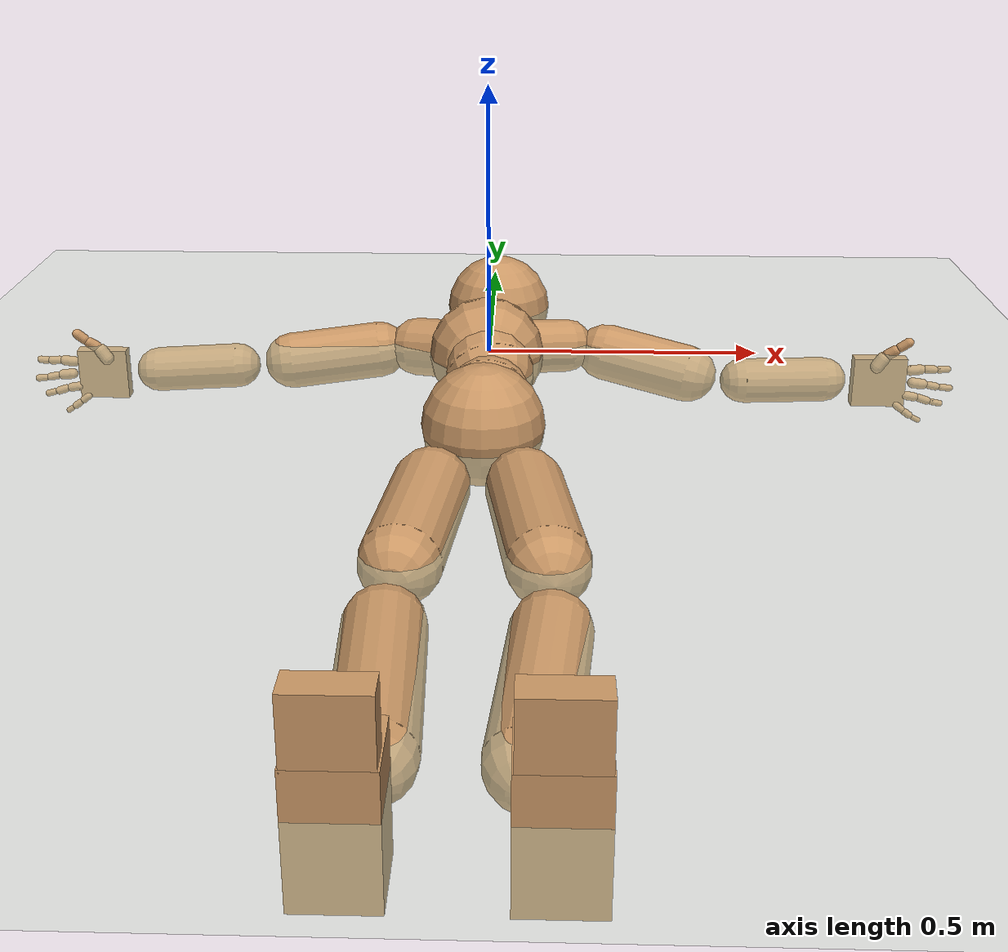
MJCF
<mujoco model="humanoid">
  <compiler coordinate="local"/>
  <default>
    <joint damping="0.0" armature="0.01" stiffness="0.0" limited="true"/>
    <geom conaffinity="1" condim="3" contype="7" margin="0.001" rgba="0.8 0.6 .4 1"/>
  </default>
  <asset>
    <texture type="skybox" builtin="gradient" rgb1=".4 .5 .6" rgb2="0 0 0" width="100" height="100"/>
    <texture builtin="flat" height="1278" mark="cross" markrgb="1 1 1" name="texgeom" random="0.01" rgb1="0.8 0.6 0.4" rgb2="0.8 0.6 0.4" type="cube" width="127"/>
    <texture builtin="checker" height="100" name="texplane" rgb1="0 0 0" rgb2="0.8 0.8 0.8" type="2d" width="100"/>
    <material name="MatPlane" reflectance="0.5" shininess="1" specular="1" texrepeat="60 60" texture="texplane"/>
    <material name="geom" texture="texgeom" texuniform="true"/>
  </asset>
  <worldbody>
    <light cutoff="100" diffuse="1 1 1" dir="-0 0 -1.3" directional="true" exponent="1" pos="0 0 1.3" specular=".1 .1 .1"/>
    <geom conaffinity="1" condim="3" name="floor" pos="0 0 0" rgba="0.8 0.9 0.8 1" size="100 100 .2" type="plane" material="MatPlane"/>
    <body name="Pelvis" pos="0.003 -0.3814 0.0132">
      <freejoint name="Pelvis"/>
      <geom type="sphere" contype="1" conaffinity="1" density="4629.6296296296305" size="0.1016" pos="0.0000 0.0000 0.0000" name="Pelvis"/>
      <body name="L_Hip" pos="0.0585 -0.0972 -0.026">
        <joint name="L_Hip_x" type="hinge" pos="0 0 0" axis="1 0 0" user="250 2.5 1 500 10 2" armature="0.01" range="-90.0000 90.0000" damping="0" stiffness="0"/>
        <joint name="L_Hip_y" type="hinge" pos="0 0 0" axis="0 1 0" user="250 2.5 1 500 10 2" armature="0.01" range="-90.0000 90.0000" damping="0" stiffness="0"/>
        <joint name="L_Hip_z" type="hinge" pos="0 0 0" axis="0 0 1" user="250 2.5 1 500 10 2" armature="0.01" range="-90.0000 90.0000" damping="0" stiffness="0"/>
        <geom type="capsule" contype="1" conaffinity="1" density="2040.816327" fromto="0.0113 -0.0773 -0.0015 0.0454 -0.3092 -0.0061" size="0.0611" name="L_Hip"/>
        <body name="L_Knee" pos="0.0567 -0.3866 -0.0076">
          <joint name="L_Knee_x" type="hinge" pos="0 0 0" axis="1 0 0" user="250 2.5 1 500 10 2" armature="0.01" range="-180.0000 180.0000" damping="0" stiffness="0"/>
          <joint name="L_Knee_y" type="hinge" pos="0 0 0" axis="0 1 0" user="250 2.5 1 500 10 2" armature="0.01" range="-5.6250 5.6250" damping="0" stiffness="0"/>
          <joint name="L_Knee_z" type="hinge" pos="0 0 0" axis="0 0 1" user="250 2.5 1 500 10 2" armature="0.01" range="-5.6250 5.6250" damping="0" stiffness="0"/>
          <geom type="capsule" contype="1" conaffinity="1" density="1234.567901" fromto="-0.0089 -0.0821 -0.0065 -0.0356 -0.3285 -0.0261" size="0.0547" name="L_Knee"/>
          <body name="L_Ankle" pos="-0.0445 -0.4107 -0.0326">
            <joint name="L_Ankle_x" type="hinge" pos="0 0 0" axis="1 0 0" user="150 2.5 1 500 10 2" armature="0.01" range="-90.0000 90.0000" damping="0" stiffness="0"/>
            <joint name="L_Ankle_y" type="hinge" pos="0 0 0" axis="0 1 0" user="150 2.5 1 500 10 2" armature="0.01" range="-90.0000 90.0000" damping="0" stiffness="0"/>
            <joint name="L_Ankle_z" type="hinge" pos="0 0 0" axis="0 0 1" user="150 2.5 1 500 10 2" armature="0.01" range="-90.0000 90.0000" damping="0" stiffness="0"/>
            <geom type="box" density="450.673137" pos="0.0424 -0.0294 0.0245" size="0.0516 0.0477 0.0885" quat="1.0000 0.0000 0.0000 0.0000" name="L_Ankle"/>
            <body name="L_Toe" pos="0.0492 -0.0595 0.1225">
              <joint name="L_Toe_x" type="hinge" pos="0 0 0" axis="1 0 0" user="150 1 1 500 1 1" armature="0.01" range="-90.0000 90.0000" damping="0" stiffness="0"/>
              <joint name="L_Toe_y" type="hinge" pos="0 0 0" axis="0 1 0" user="150 1 1 500 1 1" armature="0.01" range="-45.0000 45.0000" damping="0" stiffness="0"/>
              <joint name="L_Toe_z" type="hinge" pos="0 0 0" axis="0 0 1" user="150 1 1 500 1 1" armature="0.01" range="-45.0000 45.0000" damping="0" stiffness="0"/>
              <geom type="box" density="422.499499" pos="-0.0068 0.0035 0.0266" size="0.0494 0.0211 0.0513" quat="1.0000 0.0000 0.0000 0.0000" name="L_Toe"/>
            </body>
          </body>
        </body>
      </body>
      <body name="R_Hip" pos="-0.0634 -0.1094 -0.0205">
        <joint name="R_Hip_x" type="hinge" pos="0 0 0" axis="1 0 0" user="250 2.5 1 500 10 2" armature="0.01" range="-90.0000 90.0000" damping="0" stiffness="0"/>
        <joint name="R_Hip_y" type="hinge" pos="0 0 0" axis="0 1 0" user="250 2.5 1 500 10 2" armature="0.01" range="-90.0000 90.0000" damping="0" stiffness="0"/>
        <joint name="R_Hip_z" type="hinge" pos="0 0 0" axis="0 0 1" user="250 2.5 1 500 10 2" armature="0.01" range="-90.0000 90.0000" damping="0" stiffness="0"/>
        <geom type="capsule" contype="1" conaffinity="1" density="2040.816327" fromto="-0.0092 -0.0738 -0.0031 -0.0368 -0.2951 -0.0125" size="0.0604" name="R_Hip"/>
        <body name="R_Knee" pos="-0.046 -0.3689 -0.0157">
          <joint name="R_Knee_x" type="hinge" pos="0 0 0" axis="1 0 0" user="250 2.5 1 500 10 2" armature="0.01" range="-180.0000 180.0000" damping="0" stiffness="0"/>
          <joint name="R_Knee_y" type="hinge" pos="0 0 0" axis="0 1 0" user="250 2.5 1 500 10 2" armature="0.01" range="-5.6250 5.6250" damping="0" stiffness="0"/>
          <joint name="R_Knee_z" type="hinge" pos="0 0 0" axis="0 0 1" user="250 2.5 1 500 10 2" armature="0.01" range="-5.6250 5.6250" damping="0" stiffness="0"/>
          <geom type="capsule" contype="1" conaffinity="1" density="1234.567901" fromto="0.0031 -0.0837 -0.0041 0.0124 -0.3350 -0.0165" size="0.0564" name="R_Knee"/>
          <body name="R_Ankle" pos="0.0155 -0.4187 -0.0206">
            <joint name="R_Ankle_x" type="hinge" pos="0 0 0" axis="1 0 0" user="150 1 1 500 10 2" armature="0.01" range="-90.0000 90.0000" damping="0" stiffness="0"/>
            <joint name="R_Ankle_y" type="hinge" pos="0 0 0" axis="0 1 0" user="150 1 1 500 10 2" armature="0.01" range="-90.0000 90.0000" damping="0" stiffness="0"/>
            <joint name="R_Ankle_z" type="hinge" pos="0 0 0" axis="0 0 1" user="150 1 1 500 10 2" armature="0.01" range="-90.0000 90.0000" damping="0" stiffness="0"/>
            <geom type="box" density="450.66325" pos="-0.0251 -0.0269 0.0151" size="0.0516 0.0477 0.0885" quat="1.0000 0.0000 0.0000 0.0000" name="R_Ankle"/>
            <body name="R_Toe" pos="-0.0401 -0.0598 0.1233">
              <joint name="R_Toe_x" type="hinge" pos="0 0 0" axis="1 0 0" user="150 1 1 500 1 1" armature="0.01" range="-90.0000 90.0000" damping="0" stiffness="0"/>
              <joint name="R_Toe_y" type="hinge" pos="0 0 0" axis="0 1 0" user="150 1 1 500 1 1" armature="0.01" range="-45.0000 45.0000" damping="0" stiffness="0"/>
              <joint name="R_Toe_z" type="hinge" pos="0 0 0" axis="0 0 1" user="150 1 1 500 1 1" armature="0.01" range="-45.0000 45.0000" damping="0" stiffness="0"/>
              <geom type="box" density="422.496348" pos="0.0150 0.0063 0.0164" size="0.0494 0.0211 0.0513" quat="1.0000 0.0000 0.0000 0.0000" name="R_Toe"/>
            </body>
          </body>
        </body>
      </body>
      <body name="Torso" pos="-0.0028 0.1157 -0.0293">
        <joint name="Torso_x" type="hinge" pos="0 0 0" axis="1 0 0" user="500 5 1 500 10 2" armature="0.01" range="-60.0000 60.0000" damping="0" stiffness="0"/>
        <joint name="Torso_y" type="hinge" pos="0 0 0" axis="0 1 0" user="500 5 1 500 10 2" armature="0.01" range="-60.0000 60.0000" damping="0" stiffness="0"/>
        <joint name="Torso_z" type="hinge" pos="0 0 0" axis="0 0 1" user="500 5 1 500 10 2" armature="0.01" range="-60.0000 60.0000" damping="0" stiffness="0"/>
        <geom type="capsule" contype="1" conaffinity="1" density="2040.816327" fromto="0.0046 0.0654 -0.0030 0.0056 0.0799 -0.0037" size="0.0759" name="Torso"/>
        <body name="Spine" pos="0.0103 0.1453 -0.0066">
          <joint name="Spine_x" type="hinge" pos="0 0 0" axis="1 0 0" user="500 5 1 500 10 2" armature="0.01" range="-60.0000 60.0000" damping="0" stiffness="0"/>
          <joint name="Spine_y" type="hinge" pos="0 0 0" axis="0 1 0" user="500 5 1 500 10 2" armature="0.01" range="-60.0000 60.0000" damping="0" stiffness="0"/>
          <joint name="Spine_z" type="hinge" pos="0 0 0" axis="0 0 1" user="500 5 1 500 10 2" armature="0.01" range="-60.0000 60.0000" damping="0" stiffness="0"/>
          <geom type="capsule" contype="1" conaffinity="1" density="2040.816327" fromto="-0.0052 0.0257 0.0123 -0.0064 0.0314 0.0151" size="0.0802" name="Spine"/>
          <body name="Chest" pos="-0.0116 0.0572 0.0274">
            <joint name="Chest_x" type="hinge" pos="0 0 0" axis="1 0 0" user="500 5 1 500 10 2" armature="0.01" range="-60.0000 60.0000" damping="0" stiffness="0"/>
            <joint name="Chest_y" type="hinge" pos="0 0 0" axis="0 1 0" user="500 5 1 500 10 2" armature="0.01" range="-60.0000 60.0000" damping="0" stiffness="0"/>
            <joint name="Chest_z" type="hinge" pos="0 0 0" axis="0 0 1" user="500 5 1 500 10 2" armature="0.01" range="-60.0000 60.0000" damping="0" stiffness="0"/>
            <geom type="capsule" contype="1" conaffinity="1" density="2040.816327" fromto="-0.0022 0.0530 -0.0073 -0.0027 0.0648 -0.0089" size="0.1065" name="Chest"/>
            <body name="Neck" pos="-0.0129 0.1748 -0.0303">
              <joint name="Neck_x" type="hinge" pos="0 0 0" axis="1 0 0" user="150 1 1 250 50 4" armature="0.01" range="-180.0000 180.0000" damping="0" stiffness="0"/>
              <joint name="Neck_y" type="hinge" pos="0 0 0" axis="0 1 0" user="150 1 1 250 50 4" armature="0.01" range="-180.0000 180.0000" damping="0" stiffness="0"/>
              <joint name="Neck_z" type="hinge" pos="0 0 0" axis="0 0 1" user="150 1 1 250 50 4" armature="0.01" range="-180.0000 180.0000" damping="0" stiffness="0"/>
              <geom type="capsule" contype="1" conaffinity="1" density="1000" fromto="0.0052 0.0345 0.0043 0.0207 0.1378 0.0171" size="0.0439" name="Neck"/>
              <body name="Head" pos="0.0258 0.1723 0.0213">
                <joint name="Head_x" type="hinge" pos="0 0 0" axis="1 0 0" user="150 1 1 250 50 4" armature="0.01" range="-90.0000 90.0000" damping="0" stiffness="0"/>
                <joint name="Head_y" type="hinge" pos="0 0 0" axis="0 1 0" user="150 1 1 250 50 4" armature="0.01" range="-90.0000 90.0000" damping="0" stiffness="0"/>
                <joint name="Head_z" type="hinge" pos="0 0 0" axis="0 0 1" user="150 1 1 250 50 4" armature="0.01" range="-90.0000 90.0000" damping="0" stiffness="0"/>
                <geom type="sphere" contype="1" conaffinity="1" density="1000" size="0.1033" pos="0.0000 0.0000 0.0000" name="Head"/>
              </body>
            </body>
            <body name="L_Thorax" pos="0.0477 0.0898 -0.0061">
              <joint name="L_Thorax_x" type="hinge" pos="0 0 0" axis="1 0 0" user="200 2 1 500 50 4" armature="0.01" range="-180.0000 180.0000" damping="0" stiffness="0"/>
              <joint name="L_Thorax_y" type="hinge" pos="0 0 0" axis="0 1 0" user="200 2 1 500 50 4" armature="0.01" range="-180.0000 180.0000" damping="0" stiffness="0"/>
              <joint name="L_Thorax_z" type="hinge" pos="0 0 0" axis="0 0 1" user="200 2 1 500 50 4" armature="0.01" range="-180.0000 180.0000" damping="0" stiffness="0"/>
              <geom type="capsule" contype="1" conaffinity="1" density="1000" fromto="0.0251 0.0119 -0.0031 0.1005 0.0475 -0.0126" size="0.0509" name="L_Thorax"/>
              <body name="L_Shoulder" pos="0.1257 0.0594 -0.0157">
                <joint name="L_Shoulder_x" type="hinge" pos="0 0 0" axis="1 0 0" user="200 2 1 500 50 4" armature="0.01" range="-180.0000 180.0000" damping="0" stiffness="0"/>
                <joint name="L_Shoulder_y" type="hinge" pos="0 0 0" axis="0 1 0" user="200 2 1 500 50 4" armature="0.01" range="-180.0000 180.0000" damping="0" stiffness="0"/>
                <joint name="L_Shoulder_z" type="hinge" pos="0 0 0" axis="0 0 1" user="200 2 1 500 50 4" armature="0.01" range="-180.0000 180.0000" damping="0" stiffness="0"/>
                <geom type="capsule" contype="1" conaffinity="1" density="1000" fromto="0.0516 -0.0147 -0.0088 0.2063 -0.0587 -0.0351" size="0.0538" name="L_Shoulder"/>
                <body name="L_Elbow" pos="0.2579 -0.0734 -0.0439">
                  <joint name="L_Elbow_x" type="hinge" pos="0 0 0" axis="1 0 0" user="150 1 1 150 10 2" armature="0.01" range="-720.0000 720.0000" damping="0" stiffness="0"/>
                  <joint name="L_Elbow_y" type="hinge" pos="0 0 0" axis="0 1 0" user="150 1 1 150 10 2" armature="0.01" range="-720.0000 720.0000" damping="0" stiffness="0"/>
                  <joint name="L_Elbow_z" type="hinge" pos="0 0 0" axis="0 0 1" user="150 1 1 150 10 2" armature="0.01" range="-720.0000 720.0000" damping="0" stiffness="0"/>
                  <geom type="capsule" contype="1" conaffinity="1" density="1000" fromto="0.0517 0.0047 -0.0002 0.2066 0.0186 -0.0008" size="0.0419" name="L_Elbow"/>
                  <body name="L_Wrist" pos="0.2583 0.0233 -0.001">
                    <joint name="L_Wrist_x" type="hinge" pos="0 0 0" axis="1 0 0" user="100 1 1 150 1 1" armature="0.01" range="-180.0000 180.0000" damping="0" stiffness="0"/>
                    <joint name="L_Wrist_y" type="hinge" pos="0 0 0" axis="0 1 0" user="100 1 1 150 1 1" armature="0.01" range="-180.0000 180.0000" damping="0" stiffness="0"/>
                    <joint name="L_Wrist_z" type="hinge" pos="0 0 0" axis="0 0 1" user="100 1 1 150 1 1" armature="0.01" range="-180.0000 180.0000" damping="0" stiffness="0"/>
                    <geom type="box" density="1207.963877" pos="0.0540 -0.0014 -0.0031" size="0.0499 0.0127 0.0479" quat="1.0000 0.0000 0.0000 0.0000" name="L_Wrist"/>
                    <body name="L_Index1" pos="0.105 -0.0086 0.0202">
                      <joint name="L_Index1_x" type="hinge" pos="0 0 0" axis="1 0 0" user="100 10 1 150" armature="0.01" range="-180.0000 180.0000" damping="0" stiffness="0"/>
                      <joint name="L_Index1_y" type="hinge" pos="0 0 0" axis="0 1 0" user="100 10 1 150" armature="0.01" range="-180.0000 180.0000" damping="0" stiffness="0"/>
                      <joint name="L_Index1_z" type="hinge" pos="0 0 0" axis="0 0 1" user="100 10 1 150" armature="0.01" range="-180.0000 180.0000" damping="0" stiffness="0"/>
                      <geom type="capsule" contype="1" conaffinity="1" density="1000" fromto="0.0065 0.0005 0.0006 0.0262 0.0019 0.0024" size="0.0095" name="L_Index1"/>
                      <body name="L_Index2" pos="0.0327 0.0024 0.003">
                        <joint name="L_Index2_x" type="hinge" pos="0 0 0" axis="1 0 0" user="100 10 1 150" armature="0.01" range="-180.0000 180.0000" damping="0" stiffness="0"/>
                        <joint name="L_Index2_y" type="hinge" pos="0 0 0" axis="0 1 0" user="100 10 1 150" armature="0.01" range="-180.0000 180.0000" damping="0" stiffness="0"/>
                        <joint name="L_Index2_z" type="hinge" pos="0 0 0" axis="0 0 1" user="100 10 1 150" armature="0.01" range="-180.0000 180.0000" damping="0" stiffness="0"/>
                        <geom type="capsule" contype="1" conaffinity="1" density="1000" fromto="0.0046 -0.0005 -0.0000 0.0184 -0.0020 -0.0000" size="0.0079" name="L_Index2"/>
                        <body name="L_Index3" pos="0.023 -0.0024 -0.0001">
                          <joint name="L_Index3_x" type="hinge" pos="0 0 0" axis="1 0 0" user="100 10 1 150" armature="0.01" range="-180.0000 180.0000" damping="0" stiffness="0"/>
                          <joint name="L_Index3_y" type="hinge" pos="0 0 0" axis="0 1 0" user="100 10 1 150" armature="0.01" range="-180.0000 180.0000" damping="0" stiffness="0"/>
                          <joint name="L_Index3_z" type="hinge" pos="0 0 0" axis="0 0 1" user="100 10 1 150" armature="0.01" range="-180.0000 180.0000" damping="0" stiffness="0"/>
                          <geom type="capsule" contype="1" conaffinity="1" density="1000" fromto="0.0050 -0.0001 0.0004 0.0200 -0.0004 0.0016" size="0.0066" name="L_Index3"/>
                        </body>
                      </body>
                    </body>
                    <body name="L_Middle1" pos="0.1128 -0.0061 -0.0041">
                      <joint name="L_Middle1_x" type="hinge" pos="0 0 0" axis="1 0 0" user="100 10 1 150" armature="0.01" range="-180.0000 180.0000" damping="0" stiffness="0"/>
                      <joint name="L_Middle1_y" type="hinge" pos="0 0 0" axis="0 1 0" user="100 10 1 150" armature="0.01" range="-180.0000 180.0000" damping="0" stiffness="0"/>
                      <joint name="L_Middle1_z" type="hinge" pos="0 0 0" axis="0 0 1" user="100 10 1 150" armature="0.01" range="-180.0000 180.0000" damping="0" stiffness="0"/>
                      <geom type="capsule" contype="1" conaffinity="1" density="1000" fromto="0.0063 0.0002 -0.0008 0.0250 0.0007 -0.0033" size="0.0098" name="L_Middle1"/>
                      <body name="L_Middle2" pos="0.0313 0.0008 -0.0041">
                        <joint name="L_Middle2_x" type="hinge" pos="0 0 0" axis="1 0 0" user="100 10 1 150" armature="0.01" range="-180.0000 180.0000" damping="0" stiffness="0"/>
                        <joint name="L_Middle2_y" type="hinge" pos="0 0 0" axis="0 1 0" user="100 10 1 150" armature="0.01" range="-180.0000 180.0000" damping="0" stiffness="0"/>
                        <joint name="L_Middle2_z" type="hinge" pos="0 0 0" axis="0 0 1" user="100 10 1 150" armature="0.01" range="-180.0000 180.0000" damping="0" stiffness="0"/>
                        <geom type="capsule" contype="1" conaffinity="1" density="1000" fromto="0.0048 -0.0004 -0.0008 0.0192 -0.0017 -0.0034" size="0.0072" name="L_Middle2"/>
                        <body name="L_Middle3" pos="0.024 -0.0021 -0.0042">
                          <joint name="L_Middle3_x" type="hinge" pos="0 0 0" axis="1 0 0" user="100 10 1 150" armature="0.01" range="-180.0000 180.0000" damping="0" stiffness="0"/>
                          <joint name="L_Middle3_y" type="hinge" pos="0 0 0" axis="0 1 0" user="100 10 1 150" armature="0.01" range="-180.0000 180.0000" damping="0" stiffness="0"/>
                          <joint name="L_Middle3_z" type="hinge" pos="0 0 0" axis="0 0 1" user="100 10 1 150" armature="0.01" range="-180.0000 180.0000" damping="0" stiffness="0"/>
                          <geom type="capsule" contype="1" conaffinity="1" density="1000" fromto="0.0052 -0.0000 -0.0004 0.0208 -0.0001 -0.0018" size="0.0063" name="L_Middle3"/>
                        </body>
                      </body>
                    </body>
                    <body name="L_Pinky1" pos="0.0868 -0.0147 -0.0455">
                      <joint name="L_Pinky1_x" type="hinge" pos="0 0 0" axis="1 0 0" user="100 10 1 150" armature="0.01" range="-180.0000 180.0000" damping="0" stiffness="0"/>
                      <joint name="L_Pinky1_y" type="hinge" pos="0 0 0" axis="0 1 0" user="100 10 1 150" armature="0.01" range="-180.0000 180.0000" damping="0" stiffness="0"/>
                      <joint name="L_Pinky1_z" type="hinge" pos="0 0 0" axis="0 0 1" user="100 10 1 150" armature="0.01" range="-180.0000 180.0000" damping="0" stiffness="0"/>
                      <geom type="capsule" contype="1" conaffinity="1" density="1000" fromto="0.0032 -0.0003 -0.0025 0.0129 -0.0010 -0.0098" size="0.0069" name="L_Pinky1"/>
                      <body name="L_Pinky2" pos="0.0161 -0.0013 -0.0123">
                        <joint name="L_Pinky2_x" type="hinge" pos="0 0 0" axis="1 0 0" user="100 10 1 150" armature="0.01" range="-180.0000 180.0000" damping="0" stiffness="0"/>
                        <joint name="L_Pinky2_y" type="hinge" pos="0 0 0" axis="0 1 0" user="100 10 1 150" armature="0.01" range="-180.0000 180.0000" damping="0" stiffness="0"/>
                        <joint name="L_Pinky2_z" type="hinge" pos="0 0 0" axis="0 0 1" user="100 10 1 150" armature="0.01" range="-180.0000 180.0000" damping="0" stiffness="0"/>
                        <geom type="capsule" contype="1" conaffinity="1" density="1000" fromto="0.0032 -0.0004 -0.0023 0.0128 -0.0015 -0.0091" size="0.0067" name="L_Pinky2"/>
                        <body name="L_Pinky3" pos="0.016 -0.0018 -0.0114">
                          <joint name="L_Pinky3_x" type="hinge" pos="0 0 0" axis="1 0 0" user="100 10 1 150" armature="0.01" range="-180.0000 180.0000" damping="0" stiffness="0"/>
                          <joint name="L_Pinky3_y" type="hinge" pos="0 0 0" axis="0 1 0" user="100 10 1 150" armature="0.01" range="-180.0000 180.0000" damping="0" stiffness="0"/>
                          <joint name="L_Pinky3_z" type="hinge" pos="0 0 0" axis="0 0 1" user="100 10 1 150" armature="0.01" range="-180.0000 180.0000" damping="0" stiffness="0"/>
                          <geom type="capsule" contype="1" conaffinity="1" density="1000" fromto="0.0036 0.0000 -0.0019 0.0144 0.0001 -0.0075" size="0.0051" name="L_Pinky3"/>
                        </body>
                      </body>
                    </body>
                    <body name="L_Ring1" pos="0.1006 -0.0091 -0.0285">
                      <joint name="L_Ring1_x" type="hinge" pos="0 0 0" axis="1 0 0" user="100 10 1 150" armature="0.01" range="-180.0000 180.0000" damping="0" stiffness="0"/>
                      <joint name="L_Ring1_y" type="hinge" pos="0 0 0" axis="0 1 0" user="100 10 1 150" armature="0.01" range="-180.0000 180.0000" damping="0" stiffness="0"/>
                      <joint name="L_Ring1_z" type="hinge" pos="0 0 0" axis="0 0 1" user="100 10 1 150" armature="0.01" range="-180.0000 180.0000" damping="0" stiffness="0"/>
                      <geom type="capsule" contype="1" conaffinity="1" density="1000" fromto="0.0058 0.0003 -0.0011 0.0231 0.0013 -0.0043" size="0.0083" name="L_Ring1"/>
                      <body name="L_Ring2" pos="0.0289 0.0016 -0.0054">
                        <joint name="L_Ring2_x" type="hinge" pos="0 0 0" axis="1 0 0" user="100 10 1 150" armature="0.01" range="-180.0000 180.0000" damping="0" stiffness="0"/>
                        <joint name="L_Ring2_y" type="hinge" pos="0 0 0" axis="0 1 0" user="100 10 1 150" armature="0.01" range="-180.0000 180.0000" damping="0" stiffness="0"/>
                        <joint name="L_Ring2_z" type="hinge" pos="0 0 0" axis="0 0 1" user="100 10 1 150" armature="0.01" range="-180.0000 180.0000" damping="0" stiffness="0"/>
                        <geom type="capsule" contype="1" conaffinity="1" density="1000" fromto="0.0047 -0.0003 -0.0014 0.0187 -0.0013 -0.0058" size="0.0076" name="L_Ring2"/>
                        <body name="L_Ring3" pos="0.0234 -0.0016 -0.0072">
                          <joint name="L_Ring3_x" type="hinge" pos="0 0 0" axis="1 0 0" user="100 10 1 150" armature="0.01" range="-180.0000 180.0000" damping="0" stiffness="0"/>
                          <joint name="L_Ring3_y" type="hinge" pos="0 0 0" axis="0 1 0" user="100 10 1 150" armature="0.01" range="-180.0000 180.0000" damping="0" stiffness="0"/>
                          <joint name="L_Ring3_z" type="hinge" pos="0 0 0" axis="0 0 1" user="100 10 1 150" armature="0.01" range="-180.0000 180.0000" damping="0" stiffness="0"/>
                          <geom type="capsule" contype="1" conaffinity="1" density="1000" fromto="0.0051 0.0001 -0.0010 0.0203 0.0003 -0.0042" size="0.0059" name="L_Ring3"/>
                        </body>
                      </body>
                    </body>
                    <body name="L_Thumb1" pos="0.0418 -0.0188 0.027">
                      <joint name="L_Thumb1_x" type="hinge" pos="0 0 0" axis="1 0 0" user="100 10 1 150" armature="0.01" range="-180.0000 180.0000" damping="0" stiffness="0"/>
                      <joint name="L_Thumb1_y" type="hinge" pos="0 0 0" axis="0 1 0" user="100 10 1 150" armature="0.01" range="-180.0000 180.0000" damping="0" stiffness="0"/>
                      <joint name="L_Thumb1_z" type="hinge" pos="0 0 0" axis="0 0 1" user="100 10 1 150" armature="0.01" range="-180.0000 180.0000" damping="0" stiffness="0"/>
                      <geom type="capsule" contype="1" conaffinity="1" density="1000" fromto="0.0035 0.0002 0.0052 0.0140 0.0009 0.0209" size="0.0126" name="L_Thumb1"/>
                      <body name="L_Thumb2" pos="0.0175 0.0012 0.0261">
                        <joint name="L_Thumb2_x" type="hinge" pos="0 0 0" axis="1 0 0" user="100 10 1 150" armature="0.01" range="-180.0000 180.0000" damping="0" stiffness="0"/>
                        <joint name="L_Thumb2_y" type="hinge" pos="0 0 0" axis="0 1 0" user="100 10 1 150" armature="0.01" range="-180.0000 180.0000" damping="0" stiffness="0"/>
                        <joint name="L_Thumb2_z" type="hinge" pos="0 0 0" axis="0 0 1" user="100 10 1 150" armature="0.01" range="-180.0000 180.0000" damping="0" stiffness="0"/>
                        <geom type="capsule" contype="1" conaffinity="1" density="1000" fromto="0.0042 -0.0010 0.0032 0.0169 -0.0042 0.0128" size="0.0099" name="L_Thumb2"/>
                        <body name="L_Thumb3" pos="0.0212 -0.0052 0.016">
                          <joint name="L_Thumb3_x" type="hinge" pos="0 0 0" axis="1 0 0" user="100 10 1 150" armature="0.01" range="-180.0000 180.0000" damping="0" stiffness="0"/>
                          <joint name="L_Thumb3_y" type="hinge" pos="0 0 0" axis="0 1 0" user="100 10 1 150" armature="0.01" range="-180.0000 180.0000" damping="0" stiffness="0"/>
                          <joint name="L_Thumb3_z" type="hinge" pos="0 0 0" axis="0 0 1" user="100 10 1 150" armature="0.01" range="-180.0000 180.0000" damping="0" stiffness="0"/>
                          <geom type="capsule" contype="1" conaffinity="1" density="1000" fromto="0.0046 -0.0006 0.0036 0.0185 -0.0026 0.0144" size="0.009" name="L_Thumb3"/>
                        </body>
                      </body>
                    </body>
                  </body>
                </body>
              </body>
            </body>
            <body name="R_Thorax" pos="-0.0497 0.089 -0.0124">
              <joint name="R_Thorax_x" type="hinge" pos="0 0 0" axis="1 0 0" user="200 2 1 150 10 2" armature="0.01" range="-180.0000 180.0000" damping="0" stiffness="0"/>
              <joint name="R_Thorax_y" type="hinge" pos="0 0 0" axis="0 1 0" user="200 2 1 150 10 2" armature="0.01" range="-180.0000 180.0000" damping="0" stiffness="0"/>
              <joint name="R_Thorax_z" type="hinge" pos="0 0 0" axis="0 0 1" user="200 2 1 150 10 2" armature="0.01" range="-180.0000 180.0000" damping="0" stiffness="0"/>
              <geom type="capsule" contype="1" conaffinity="1" density="1000" fromto="-0.0217 0.0110 -0.0026 -0.0867 0.0441 -0.0103" size="0.0558" name="R_Thorax"/>
              <body name="R_Shoulder" pos="-0.1084 0.0551 -0.0128">
                <joint name="R_Shoulder_x" type="hinge" pos="0 0 0" axis="1 0 0" user="200 2 1 250 10 2" armature="0.01" range="-180.0000 180.0000" damping="0" stiffness="0"/>
                <joint name="R_Shoulder_y" type="hinge" pos="0 0 0" axis="0 1 0" user="200 2 1 250 10 2" armature="0.01" range="-180.0000 180.0000" damping="0" stiffness="0"/>
                <joint name="R_Shoulder_z" type="hinge" pos="0 0 0" axis="0 0 1" user="200 2 1 250 10 2" armature="0.01" range="-180.0000 180.0000" damping="0" stiffness="0"/>
                <geom type="capsule" contype="1" conaffinity="1" density="1000" fromto="-0.0552 -0.0073 -0.0055 -0.2207 -0.0291 -0.0221" size="0.0537" name="R_Shoulder"/>
                <body name="R_Elbow" pos="-0.2758 -0.0364 -0.0276">
                  <joint name="R_Elbow_x" type="hinge" pos="0 0 0" axis="1 0 0" user="150 1 1 150 10 2" armature="0.01" range="-720.0000 720.0000" damping="0" stiffness="0"/>
                  <joint name="R_Elbow_y" type="hinge" pos="0 0 0" axis="0 1 0" user="150 1 1 150 10 2" armature="0.01" range="-720.0000 720.0000" damping="0" stiffness="0"/>
                  <joint name="R_Elbow_z" type="hinge" pos="0 0 0" axis="0 0 1" user="150 1 1 150 10 2" armature="0.01" range="-720.0000 720.0000" damping="0" stiffness="0"/>
                  <geom type="capsule" contype="1" conaffinity="1" density="1000" fromto="-0.0510 -0.0011 -0.0028 -0.2042 -0.0044 -0.0114" size="0.0422" name="R_Elbow"/>
                  <body name="R_Wrist" pos="-0.2552 -0.0055 -0.0142">
                    <joint name="R_Wrist_x" type="hinge" pos="0 0 0" axis="1 0 0" user="100 1 1 150 1 1" armature="0.01" range="-180.0000 180.0000" damping="0" stiffness="0"/>
                    <joint name="R_Wrist_y" type="hinge" pos="0 0 0" axis="0 1 0" user="100 1 1 150 1 1" armature="0.01" range="-180.0000 180.0000" damping="0" stiffness="0"/>
                    <joint name="R_Wrist_z" type="hinge" pos="0 0 0" axis="0 0 1" user="100 1 1 150 1 1" armature="0.01" range="-180.0000 180.0000" damping="0" stiffness="0"/>
                    <geom type="box" density="1236.826797" pos="-0.0553 -0.0046 -0.0028" size="0.0469 0.0127 0.0479" quat="1.0000 0.0000 0.0000 0.0000" name="R_Wrist"/>
                    <body name="R_Index1" pos="-0.103 -0.0117 0.0205">
                      <joint name="R_Index1_x" type="hinge" pos="0 0 0" axis="1 0 0" user="100 10 1 150" armature="0.01" range="-180.0000 180.0000" damping="0" stiffness="0"/>
                      <joint name="R_Index1_y" type="hinge" pos="0 0 0" axis="0 1 0" user="100 10 1 150" armature="0.01" range="-180.0000 180.0000" damping="0" stiffness="0"/>
                      <joint name="R_Index1_z" type="hinge" pos="0 0 0" axis="0 0 1" user="100 10 1 150" armature="0.01" range="-180.0000 180.0000" damping="0" stiffness="0"/>
                      <geom type="capsule" contype="1" conaffinity="1" density="1000" fromto="-0.0065 0.0005 0.0006 -0.0262 0.0019 0.0024" size="0.0095" name="R_Index1"/>
                      <body name="R_Index2" pos="-0.0327 0.0024 0.003">
                        <joint name="R_Index2_x" type="hinge" pos="0 0 0" axis="1 0 0" user="100 10 1 150" armature="0.01" range="-180.0000 180.0000" damping="0" stiffness="0"/>
                        <joint name="R_Index2_y" type="hinge" pos="0 0 0" axis="0 1 0" user="100 10 1 150" armature="0.01" range="-180.0000 180.0000" damping="0" stiffness="0"/>
                        <joint name="R_Index2_z" type="hinge" pos="0 0 0" axis="0 0 1" user="100 10 1 150" armature="0.01" range="-180.0000 180.0000" damping="0" stiffness="0"/>
                        <geom type="capsule" contype="1" conaffinity="1" density="1000" fromto="-0.0046 -0.0005 -0.0000 -0.0184 -0.0020 -0.0000" size="0.0079" name="R_Index2"/>
                        <body name="R_Index3" pos="-0.023 -0.0024 -0.0001">
                          <joint name="R_Index3_x" type="hinge" pos="0 0 0" axis="1 0 0" user="100 10 1 150" armature="0.01" range="-180.0000 180.0000" damping="0" stiffness="0"/>
                          <joint name="R_Index3_y" type="hinge" pos="0 0 0" axis="0 1 0" user="100 10 1 150" armature="0.01" range="-180.0000 180.0000" damping="0" stiffness="0"/>
                          <joint name="R_Index3_z" type="hinge" pos="0 0 0" axis="0 0 1" user="100 10 1 150" armature="0.01" range="-180.0000 180.0000" damping="0" stiffness="0"/>
                          <geom type="capsule" contype="1" conaffinity="1" density="1000" fromto="-0.0042 -0.0001 0.0004 -0.0168 -0.0004 0.0016" size="0.0069" name="R_Index3"/>
                        </body>
                      </body>
                    </body>
                    <body name="R_Middle1" pos="-0.1108 -0.0093 -0.0039">
                      <joint name="R_Middle1_x" type="hinge" pos="0 0 0" axis="1 0 0" user="100 10 1 150" armature="0.01" range="-180.0000 180.0000" damping="0" stiffness="0"/>
                      <joint name="R_Middle1_y" type="hinge" pos="0 0 0" axis="0 1 0" user="100 10 1 150" armature="0.01" range="-180.0000 180.0000" damping="0" stiffness="0"/>
                      <joint name="R_Middle1_z" type="hinge" pos="0 0 0" axis="0 0 1" user="100 10 1 150" armature="0.01" range="-180.0000 180.0000" damping="0" stiffness="0"/>
                      <geom type="capsule" contype="1" conaffinity="1" density="1000" fromto="-0.0063 0.0002 -0.0008 -0.0250 0.0007 -0.0033" size="0.0098" name="R_Middle1"/>
                      <body name="R_Middle2" pos="-0.0313 0.0008 -0.0041">
                        <joint name="R_Middle2_x" type="hinge" pos="0 0 0" axis="1 0 0" user="100 10 1 150" armature="0.01" range="-180.0000 180.0000" damping="0" stiffness="0"/>
                        <joint name="R_Middle2_y" type="hinge" pos="0 0 0" axis="0 1 0" user="100 10 1 150" armature="0.01" range="-180.0000 180.0000" damping="0" stiffness="0"/>
                        <joint name="R_Middle2_z" type="hinge" pos="0 0 0" axis="0 0 1" user="100 10 1 150" armature="0.01" range="-180.0000 180.0000" damping="0" stiffness="0"/>
                        <geom type="capsule" contype="1" conaffinity="1" density="1000" fromto="-0.0048 -0.0004 -0.0008 -0.0192 -0.0017 -0.0034" size="0.0073" name="R_Middle2"/>
                        <body name="R_Middle3" pos="-0.024 -0.0021 -0.0042">
                          <joint name="R_Middle3_x" type="hinge" pos="0 0 0" axis="1 0 0" user="100 10 1 150" armature="0.01" range="-180.0000 180.0000" damping="0" stiffness="0"/>
                          <joint name="R_Middle3_y" type="hinge" pos="0 0 0" axis="0 1 0" user="100 10 1 150" armature="0.01" range="-180.0000 180.0000" damping="0" stiffness="0"/>
                          <joint name="R_Middle3_z" type="hinge" pos="0 0 0" axis="0 0 1" user="100 10 1 150" armature="0.01" range="-180.0000 180.0000" damping="0" stiffness="0"/>
                          <geom type="capsule" contype="1" conaffinity="1" density="1000" fromto="-0.0044 -0.0000 -0.0004 -0.0176 -0.0001 -0.0018" size="0.0066" name="R_Middle3"/>
                        </body>
                      </body>
                    </body>
                    <body name="R_Pinky1" pos="-0.0848 -0.0179 -0.0453">
                      <joint name="R_Pinky1_x" type="hinge" pos="0 0 0" axis="1 0 0" user="100 10 1 150" armature="0.01" range="-180.0000 180.0000" damping="0" stiffness="0"/>
                      <joint name="R_Pinky1_y" type="hinge" pos="0 0 0" axis="0 1 0" user="100 10 1 150" armature="0.01" range="-180.0000 180.0000" damping="0" stiffness="0"/>
                      <joint name="R_Pinky1_z" type="hinge" pos="0 0 0" axis="0 0 1" user="100 10 1 150" armature="0.01" range="-180.0000 180.0000" damping="0" stiffness="0"/>
                      <geom type="capsule" contype="1" conaffinity="1" density="1000" fromto="-0.0032 -0.0003 -0.0025 -0.0129 -0.0010 -0.0098" size="0.0069" name="R_Pinky1"/>
                      <body name="R_Pinky2" pos="-0.0161 -0.0013 -0.0123">
                        <joint name="R_Pinky2_x" type="hinge" pos="0 0 0" axis="1 0 0" user="100 10 1 150" armature="0.01" range="-180.0000 180.0000" damping="0" stiffness="0"/>
                        <joint name="R_Pinky2_y" type="hinge" pos="0 0 0" axis="0 1 0" user="100 10 1 150" armature="0.01" range="-180.0000 180.0000" damping="0" stiffness="0"/>
                        <joint name="R_Pinky2_z" type="hinge" pos="0 0 0" axis="0 0 1" user="100 10 1 150" armature="0.01" range="-180.0000 180.0000" damping="0" stiffness="0"/>
                        <geom type="capsule" contype="1" conaffinity="1" density="1000" fromto="-0.0032 -0.0004 -0.0023 -0.0128 -0.0015 -0.0091" size="0.0067" name="R_Pinky2"/>
                        <body name="R_Pinky3" pos="-0.016 -0.0018 -0.0114">
                          <joint name="R_Pinky3_x" type="hinge" pos="0 0 0" axis="1 0 0" user="100 10 1 150" armature="0.01" range="-180.0000 180.0000" damping="0" stiffness="0"/>
                          <joint name="R_Pinky3_y" type="hinge" pos="0 0 0" axis="0 1 0" user="100 10 1 150" armature="0.01" range="-180.0000 180.0000" damping="0" stiffness="0"/>
                          <joint name="R_Pinky3_z" type="hinge" pos="0 0 0" axis="0 0 1" user="100 10 1 150" armature="0.01" range="-180.0000 180.0000" damping="0" stiffness="0"/>
                          <geom type="capsule" contype="1" conaffinity="1" density="1000" fromto="-0.0028 0.0000 -0.0019 -0.0112 0.0001 -0.0075" size="0.0053" name="R_Pinky3"/>
                        </body>
                      </body>
                    </body>
                    <body name="R_Ring1" pos="-0.0986 -0.0123 -0.0282">
                      <joint name="R_Ring1_x" type="hinge" pos="0 0 0" axis="1 0 0" user="100 10 1 150" armature="0.01" range="-180.0000 180.0000" damping="0" stiffness="0"/>
                      <joint name="R_Ring1_y" type="hinge" pos="0 0 0" axis="0 1 0" user="100 10 1 150" armature="0.01" range="-180.0000 180.0000" damping="0" stiffness="0"/>
                      <joint name="R_Ring1_z" type="hinge" pos="0 0 0" axis="0 0 1" user="100 10 1 150" armature="0.01" range="-180.0000 180.0000" damping="0" stiffness="0"/>
                      <geom type="capsule" contype="1" conaffinity="1" density="1000" fromto="-0.0058 0.0003 -0.0011 -0.0231 0.0013 -0.0043" size="0.0083" name="R_Ring1"/>
                      <body name="R_Ring2" pos="-0.0289 0.0016 -0.0054">
                        <joint name="R_Ring2_x" type="hinge" pos="0 0 0" axis="1 0 0" user="100 10 1 150" armature="0.01" range="-180.0000 180.0000" damping="0" stiffness="0"/>
                        <joint name="R_Ring2_y" type="hinge" pos="0 0 0" axis="0 1 0" user="100 10 1 150" armature="0.01" range="-180.0000 180.0000" damping="0" stiffness="0"/>
                        <joint name="R_Ring2_z" type="hinge" pos="0 0 0" axis="0 0 1" user="100 10 1 150" armature="0.01" range="-180.0000 180.0000" damping="0" stiffness="0"/>
                        <geom type="capsule" contype="1" conaffinity="1" density="1000" fromto="-0.0047 -0.0003 -0.0014 -0.0187 -0.0013 -0.0058" size="0.0076" name="R_Ring2"/>
                        <body name="R_Ring3" pos="-0.0234 -0.0016 -0.0072">
                          <joint name="R_Ring3_x" type="hinge" pos="0 0 0" axis="1 0 0" user="100 10 1 150" armature="0.01" range="-180.0000 180.0000" damping="0" stiffness="0"/>
                          <joint name="R_Ring3_y" type="hinge" pos="0 0 0" axis="0 1 0" user="100 10 1 150" armature="0.01" range="-180.0000 180.0000" damping="0" stiffness="0"/>
                          <joint name="R_Ring3_z" type="hinge" pos="0 0 0" axis="0 0 1" user="100 10 1 150" armature="0.01" range="-180.0000 180.0000" damping="0" stiffness="0"/>
                          <geom type="capsule" contype="1" conaffinity="1" density="1000" fromto="-0.0043 0.0001 -0.0010 -0.0171 0.0003 -0.0042" size="0.0062" name="R_Ring3"/>
                        </body>
                      </body>
                    </body>
                    <body name="R_Thumb1" pos="-0.0398 -0.0219 0.0273">
                      <joint name="R_Thumb1_x" type="hinge" pos="0 0 0" axis="1 0 0" user="100 10 1 150" armature="0.01" range="-180.0000 180.0000" damping="0" stiffness="0"/>
                      <joint name="R_Thumb1_y" type="hinge" pos="0 0 0" axis="0 1 0" user="100 10 1 150" armature="0.01" range="-180.0000 180.0000" damping="0" stiffness="0"/>
                      <joint name="R_Thumb1_z" type="hinge" pos="0 0 0" axis="0 0 1" user="100 10 1 150" armature="0.01" range="-180.0000 180.0000" damping="0" stiffness="0"/>
                      <geom type="capsule" contype="1" conaffinity="1" density="1000" fromto="-0.0035 0.0002 0.0052 -0.0140 0.0009 0.0209" size="0.0126" name="R_Thumb1"/>
                      <body name="R_Thumb2" pos="-0.0175 0.0012 0.0261">
                        <joint name="R_Thumb2_x" type="hinge" pos="0 0 0" axis="1 0 0" user="100 10 1 150" armature="0.01" range="-180.0000 180.0000" damping="0" stiffness="0"/>
                        <joint name="R_Thumb2_y" type="hinge" pos="0 0 0" axis="0 1 0" user="100 10 1 150" armature="0.01" range="-180.0000 180.0000" damping="0" stiffness="0"/>
                        <joint name="R_Thumb2_z" type="hinge" pos="0 0 0" axis="0 0 1" user="100 10 1 150" armature="0.01" range="-180.0000 180.0000" damping="0" stiffness="0"/>
                        <geom type="capsule" contype="1" conaffinity="1" density="1000" fromto="-0.0042 -0.0010 0.0032 -0.0169 -0.0042 0.0128" size="0.0099" name="R_Thumb2"/>
                        <body name="R_Thumb3" pos="-0.0212 -0.0052 0.016">
                          <joint name="R_Thumb3_x" type="hinge" pos="0 0 0" axis="1 0 0" user="100 10 1 150" armature="0.01" range="-180.0000 180.0000" damping="0" stiffness="0"/>
                          <joint name="R_Thumb3_y" type="hinge" pos="0 0 0" axis="0 1 0" user="100 10 1 150" armature="0.01" range="-180.0000 180.0000" damping="0" stiffness="0"/>
                          <joint name="R_Thumb3_z" type="hinge" pos="0 0 0" axis="0 0 1" user="100 10 1 150" armature="0.01" range="-180.0000 180.0000" damping="0" stiffness="0"/>
                          <geom type="capsule" contype="1" conaffinity="1" density="1000" fromto="-0.0038 -0.0006 0.0036 -0.0153 -0.0026 0.0144" size="0.0093" name="R_Thumb3"/>
                        </body>
                      </body>
                    </body>
                  </body>
                </body>
              </body>
            </body>
          </body>
        </body>
      </body>
    </body>
  </worldbody>
  <actuator>
    <motor name="L_Hip_x" joint="L_Hip_x" gear="1"/>
    <motor name="L_Hip_y" joint="L_Hip_y" gear="1"/>
    <motor name="L_Hip_z" joint="L_Hip_z" gear="1"/>
    <motor name="L_Knee_x" joint="L_Knee_x" gear="1"/>
    <motor name="L_Knee_y" joint="L_Knee_y" gear="1"/>
    <motor name="L_Knee_z" joint="L_Knee_z" gear="1"/>
    <motor name="L_Ankle_x" joint="L_Ankle_x" gear="1"/>
    <motor name="L_Ankle_y" joint="L_Ankle_y" gear="1"/>
    <motor name="L_Ankle_z" joint="L_Ankle_z" gear="1"/>
    <motor name="L_Toe_x" joint="L_Toe_x" gear="1"/>
    <motor name="L_Toe_y" joint="L_Toe_y" gear="1"/>
    <motor name="L_Toe_z" joint="L_Toe_z" gear="1"/>
    <motor name="R_Hip_x" joint="R_Hip_x" gear="1"/>
    <motor name="R_Hip_y" joint="R_Hip_y" gear="1"/>
    <motor name="R_Hip_z" joint="R_Hip_z" gear="1"/>
    <motor name="R_Knee_x" joint="R_Knee_x" gear="1"/>
    <motor name="R_Knee_y" joint="R_Knee_y" gear="1"/>
    <motor name="R_Knee_z" joint="R_Knee_z" gear="1"/>
    <motor name="R_Ankle_x" joint="R_Ankle_x" gear="1"/>
    <motor name="R_Ankle_y" joint="R_Ankle_y" gear="1"/>
    <motor name="R_Ankle_z" joint="R_Ankle_z" gear="1"/>
    <motor name="R_Toe_x" joint="R_Toe_x" gear="1"/>
    <motor name="R_Toe_y" joint="R_Toe_y" gear="1"/>
    <motor name="R_Toe_z" joint="R_Toe_z" gear="1"/>
    <motor name="Torso_x" joint="Torso_x" gear="1"/>
    <motor name="Torso_y" joint="Torso_y" gear="1"/>
    <motor name="Torso_z" joint="Torso_z" gear="1"/>
    <motor name="Spine_x" joint="Spine_x" gear="1"/>
    <motor name="Spine_y" joint="Spine_y" gear="1"/>
    <motor name="Spine_z" joint="Spine_z" gear="1"/>
    <motor name="Chest_x" joint="Chest_x" gear="1"/>
    <motor name="Chest_y" joint="Chest_y" gear="1"/>
    <motor name="Chest_z" joint="Chest_z" gear="1"/>
    <motor name="Neck_x" joint="Neck_x" gear="1"/>
    <motor name="Neck_y" joint="Neck_y" gear="1"/>
    <motor name="Neck_z" joint="Neck_z" gear="1"/>
    <motor name="Head_x" joint="Head_x" gear="1"/>
    <motor name="Head_y" joint="Head_y" gear="1"/>
    <motor name="Head_z" joint="Head_z" gear="1"/>
    <motor name="L_Thorax_x" joint="L_Thorax_x" gear="1"/>
    <motor name="L_Thorax_y" joint="L_Thorax_y" gear="1"/>
    <motor name="L_Thorax_z" joint="L_Thorax_z" gear="1"/>
    <motor name="L_Shoulder_x" joint="L_Shoulder_x" gear="1"/>
    <motor name="L_Shoulder_y" joint="L_Shoulder_y" gear="1"/>
    <motor name="L_Shoulder_z" joint="L_Shoulder_z" gear="1"/>
    <motor name="L_Elbow_x" joint="L_Elbow_x" gear="1"/>
    <motor name="L_Elbow_y" joint="L_Elbow_y" gear="1"/>
    <motor name="L_Elbow_z" joint="L_Elbow_z" gear="1"/>
    <motor name="L_Wrist_x" joint="L_Wrist_x" gear="1"/>
    <motor name="L_Wrist_y" joint="L_Wrist_y" gear="1"/>
    <motor name="L_Wrist_z" joint="L_Wrist_z" gear="1"/>
    <motor name="L_Index1_x" joint="L_Index1_x" gear="1"/>
    <motor name="L_Index1_y" joint="L_Index1_y" gear="1"/>
    <motor name="L_Index1_z" joint="L_Index1_z" gear="1"/>
    <motor name="L_Index2_x" joint="L_Index2_x" gear="1"/>
    <motor name="L_Index2_y" joint="L_Index2_y" gear="1"/>
    <motor name="L_Index2_z" joint="L_Index2_z" gear="1"/>
    <motor name="L_Index3_x" joint="L_Index3_x" gear="1"/>
    <motor name="L_Index3_y" joint="L_Index3_y" gear="1"/>
    <motor name="L_Index3_z" joint="L_Index3_z" gear="1"/>
    <motor name="L_Middle1_x" joint="L_Middle1_x" gear="1"/>
    <motor name="L_Middle1_y" joint="L_Middle1_y" gear="1"/>
    <motor name="L_Middle1_z" joint="L_Middle1_z" gear="1"/>
    <motor name="L_Middle2_x" joint="L_Middle2_x" gear="1"/>
    <motor name="L_Middle2_y" joint="L_Middle2_y" gear="1"/>
    <motor name="L_Middle2_z" joint="L_Middle2_z" gear="1"/>
    <motor name="L_Middle3_x" joint="L_Middle3_x" gear="1"/>
    <motor name="L_Middle3_y" joint="L_Middle3_y" gear="1"/>
    <motor name="L_Middle3_z" joint="L_Middle3_z" gear="1"/>
    <motor name="L_Pinky1_x" joint="L_Pinky1_x" gear="1"/>
    <motor name="L_Pinky1_y" joint="L_Pinky1_y" gear="1"/>
    <motor name="L_Pinky1_z" joint="L_Pinky1_z" gear="1"/>
    <motor name="L_Pinky2_x" joint="L_Pinky2_x" gear="1"/>
    <motor name="L_Pinky2_y" joint="L_Pinky2_y" gear="1"/>
    <motor name="L_Pinky2_z" joint="L_Pinky2_z" gear="1"/>
    <motor name="L_Pinky3_x" joint="L_Pinky3_x" gear="1"/>
    <motor name="L_Pinky3_y" joint="L_Pinky3_y" gear="1"/>
    <motor name="L_Pinky3_z" joint="L_Pinky3_z" gear="1"/>
    <motor name="L_Ring1_x" joint="L_Ring1_x" gear="1"/>
    <motor name="L_Ring1_y" joint="L_Ring1_y" gear="1"/>
    <motor name="L_Ring1_z" joint="L_Ring1_z" gear="1"/>
    <motor name="L_Ring2_x" joint="L_Ring2_x" gear="1"/>
    <motor name="L_Ring2_y" joint="L_Ring2_y" gear="1"/>
    <motor name="L_Ring2_z" joint="L_Ring2_z" gear="1"/>
    <motor name="L_Ring3_x" joint="L_Ring3_x" gear="1"/>
    <motor name="L_Ring3_y" joint="L_Ring3_y" gear="1"/>
    <motor name="L_Ring3_z" joint="L_Ring3_z" gear="1"/>
    <motor name="L_Thumb1_x" joint="L_Thumb1_x" gear="1"/>
    <motor name="L_Thumb1_y" joint="L_Thumb1_y" gear="1"/>
    <motor name="L_Thumb1_z" joint="L_Thumb1_z" gear="1"/>
    <motor name="L_Thumb2_x" joint="L_Thumb2_x" gear="1"/>
    <motor name="L_Thumb2_y" joint="L_Thumb2_y" gear="1"/>
    <motor name="L_Thumb2_z" joint="L_Thumb2_z" gear="1"/>
    <motor name="L_Thumb3_x" joint="L_Thumb3_x" gear="1"/>
    <motor name="L_Thumb3_y" joint="L_Thumb3_y" gear="1"/>
    <motor name="L_Thumb3_z" joint="L_Thumb3_z" gear="1"/>
    <motor name="R_Thorax_x" joint="R_Thorax_x" gear="1"/>
    <motor name="R_Thorax_y" joint="R_Thorax_y" gear="1"/>
    <motor name="R_Thorax_z" joint="R_Thorax_z" gear="1"/>
    <motor name="R_Shoulder_x" joint="R_Shoulder_x" gear="1"/>
    <motor name="R_Shoulder_y" joint="R_Shoulder_y" gear="1"/>
    <motor name="R_Shoulder_z" joint="R_Shoulder_z" gear="1"/>
    <motor name="R_Elbow_x" joint="R_Elbow_x" gear="1"/>
    <motor name="R_Elbow_y" joint="R_Elbow_y" gear="1"/>
    <motor name="R_Elbow_z" joint="R_Elbow_z" gear="1"/>
    <motor name="R_Wrist_x" joint="R_Wrist_x" gear="1"/>
    <motor name="R_Wrist_y" joint="R_Wrist_y" gear="1"/>
    <motor name="R_Wrist_z" joint="R_Wrist_z" gear="1"/>
    <motor name="R_Index1_x" joint="R_Index1_x" gear="1"/>
    <motor name="R_Index1_y" joint="R_Index1_y" gear="1"/>
    <motor name="R_Index1_z" joint="R_Index1_z" gear="1"/>
    <motor name="R_Index2_x" joint="R_Index2_x" gear="1"/>
    <motor name="R_Index2_y" joint="R_Index2_y" gear="1"/>
    <motor name="R_Index2_z" joint="R_Index2_z" gear="1"/>
    <motor name="R_Index3_x" joint="R_Index3_x" gear="1"/>
    <motor name="R_Index3_y" joint="R_Index3_y" gear="1"/>
    <motor name="R_Index3_z" joint="R_Index3_z" gear="1"/>
    <motor name="R_Middle1_x" joint="R_Middle1_x" gear="1"/>
    <motor name="R_Middle1_y" joint="R_Middle1_y" gear="1"/>
    <motor name="R_Middle1_z" joint="R_Middle1_z" gear="1"/>
    <motor name="R_Middle2_x" joint="R_Middle2_x" gear="1"/>
    <motor name="R_Middle2_y" joint="R_Middle2_y" gear="1"/>
    <motor name="R_Middle2_z" joint="R_Middle2_z" gear="1"/>
    <motor name="R_Middle3_x" joint="R_Middle3_x" gear="1"/>
    <motor name="R_Middle3_y" joint="R_Middle3_y" gear="1"/>
    <motor name="R_Middle3_z" joint="R_Middle3_z" gear="1"/>
    <motor name="R_Pinky1_x" joint="R_Pinky1_x" gear="1"/>
    <motor name="R_Pinky1_y" joint="R_Pinky1_y" gear="1"/>
    <motor name="R_Pinky1_z" joint="R_Pinky1_z" gear="1"/>
    <motor name="R_Pinky2_x" joint="R_Pinky2_x" gear="1"/>
    <motor name="R_Pinky2_y" joint="R_Pinky2_y" gear="1"/>
    <motor name="R_Pinky2_z" joint="R_Pinky2_z" gear="1"/>
    <motor name="R_Pinky3_x" joint="R_Pinky3_x" gear="1"/>
    <motor name="R_Pinky3_y" joint="R_Pinky3_y" gear="1"/>
    <motor name="R_Pinky3_z" joint="R_Pinky3_z" gear="1"/>
    <motor name="R_Ring1_x" joint="R_Ring1_x" gear="1"/>
    <motor name="R_Ring1_y" joint="R_Ring1_y" gear="1"/>
    <motor name="R_Ring1_z" joint="R_Ring1_z" gear="1"/>
    <motor name="R_Ring2_x" joint="R_Ring2_x" gear="1"/>
    <motor name="R_Ring2_y" joint="R_Ring2_y" gear="1"/>
    <motor name="R_Ring2_z" joint="R_Ring2_z" gear="1"/>
    <motor name="R_Ring3_x" joint="R_Ring3_x" gear="1"/>
    <motor name="R_Ring3_y" joint="R_Ring3_y" gear="1"/>
    <motor name="R_Ring3_z" joint="R_Ring3_z" gear="1"/>
    <motor name="R_Thumb1_x" joint="R_Thumb1_x" gear="1"/>
    <motor name="R_Thumb1_y" joint="R_Thumb1_y" gear="1"/>
    <motor name="R_Thumb1_z" joint="R_Thumb1_z" gear="1"/>
    <motor name="R_Thumb2_x" joint="R_Thumb2_x" gear="1"/>
    <motor name="R_Thumb2_y" joint="R_Thumb2_y" gear="1"/>
    <motor name="R_Thumb2_z" joint="R_Thumb2_z" gear="1"/>
    <motor name="R_Thumb3_x" joint="R_Thumb3_x" gear="1"/>
    <motor name="R_Thumb3_y" joint="R_Thumb3_y" gear="1"/>
    <motor name="R_Thumb3_z" joint="R_Thumb3_z" gear="1"/>
  </actuator>
  <contact>
    <exclude body1="Torso" body2="Chest"/>
    <exclude body1="Head" body2="Chest"/>
    <exclude body1="R_Knee" body2="R_Toe"/>
    <exclude body1="R_Knee" body2="L_Ankle"/>
    <exclude body1="R_Knee" body2="L_Toe"/>
    <exclude body1="L_Knee" body2="L_Toe"/>
    <exclude body1="L_Knee" body2="R_Ankle"/>
    <exclude body1="L_Knee" body2="R_Toe"/>
    <exclude body1="L_Shoulder" body2="Chest"/>
    <exclude body1="R_Shoulder" body2="Chest"/>
  </contact>
  <sensor/>
  <size njmax="700" nconmax="700"/>
</mujoco>
